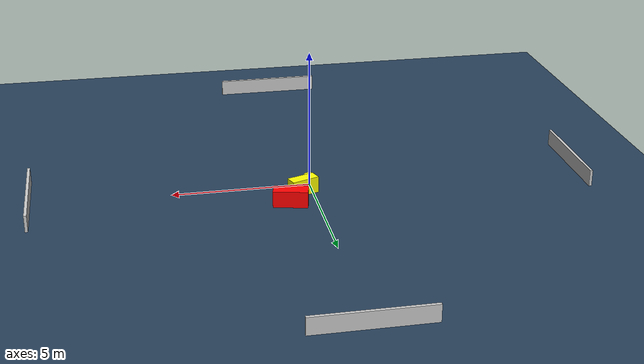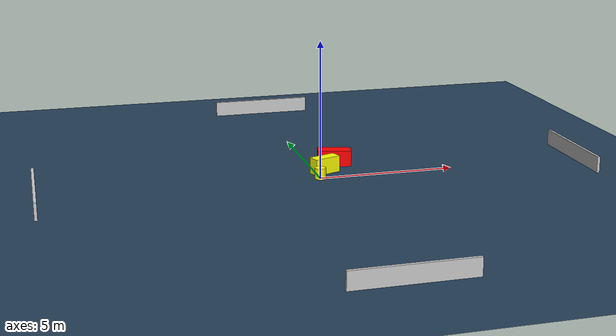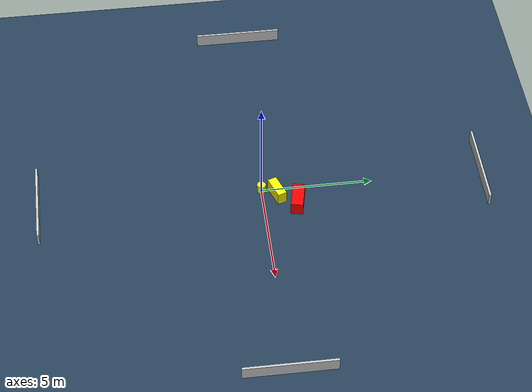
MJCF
<?xml version="1.0" ?>
<mujoco model="generated_environment">
  <option timestep="0.01" integrator="RK4" cone="elliptic"/>
  <default>
    <geom density="1"/>
  </default>
  <asset>
    <texture builtin="gradient" height="3072" name="skybox" rgb1="0.3 0.5 0.7" rgb2="0 0 0" type="skybox" width="512"/>
    <texture builtin="checker" height="300" name="groundplane" rgb1="0.2 0.3 0.4" rgb2="0.1 0.2 0.3" type="2d" width="300"/>
    <material name="groundplane" reflectance="0.2" texrepeat="5 5" texture="groundplane"/>
  </asset>
  <worldbody>
    <light dir="0 0 -1" directional="true" pos="0 0 1.5"/>
    <geom condim="3" friction="0.5 0.005 0.001" material="groundplane" name="floor" pos="0 0 0" size="0 0 0.05" type="plane"/>
    <body name="walls">
      <geom name="wall_1" condim="4" pos="-10.0 0.0 0.3" rgba="0.800000011920929 0.800000011920929 0.800000011920929 1.0" size="0.05 2.0 0.3" type="box"/>
      <geom name="wall_2" condim="4" pos="10.0 0.0 0.3" rgba="0.800000011920929 0.800000011920929 0.800000011920929 1.0" size="0.05 2.0 0.3" type="box"/>
      <geom name="wall_3" condim="4" pos="0.0 -10.0 0.3" rgba="0.800000011920929 0.800000011920929 0.800000011920929 1.0" size="2.0 0.05 0.3" type="box"/>
      <geom name="wall_4" condim="4" pos="0.0 10.0 0.3" rgba="0.800000011920929 0.800000011920929 0.800000011920929 1.0" size="2.0 0.05 0.3" type="box"/>
    </body>
    <body name="robot">
      <joint name="joint_x" type="slide" pos="0 0 0" axis="1 0 0"/>
      <joint name="joint_y" type="slide" pos="0 0 0" axis="0 1 0"/>
      <geom name="robot" type="cylinder" pos="0.0 0.0 0.2" size="0.2 0.2 0.0" mass="5.0" friction="1.0 0.005 0.0001" condim="4" rgba="1.0 1.0 0.0 1.0"/>
    </body>
    <body name="obstacle_1_movable">
      <geom name="obstacle_1_movable" condim="4" pos="0.35312366077395524 0.6638639674434395 0.3" euler="0 0 290.24764434128366" friction="0.0 0.005 0.001" rgba="1.0 1.0 0.0 1.0" size="0.21056782782796388 0.5198341392951313 0.3" type="box" mass="0.1"/>
      <joint type="free"/>
    </body>
    <body name="obstacle_2_static">
      <geom name="obstacle_2_static" condim="4" pos="0.9506954455701664 1.5217540802709246 0.3" euler="0 0 347.91651129806075" friction="0.0 0.005 0.001" rgba="1.0 0.0 0.0 1.0" size="0.6171498119906291 0.27218672322518966 0.3" type="box"/>
    </body>
  </worldbody>
  <actuator>
    <motor name="actuator_x" joint="joint_x" gear="1" ctrlrange="-1 1"/>
    <motor name="actuator_y" joint="joint_y" gear="1" ctrlrange="-1 1"/>
  </actuator>
</mujoco>
